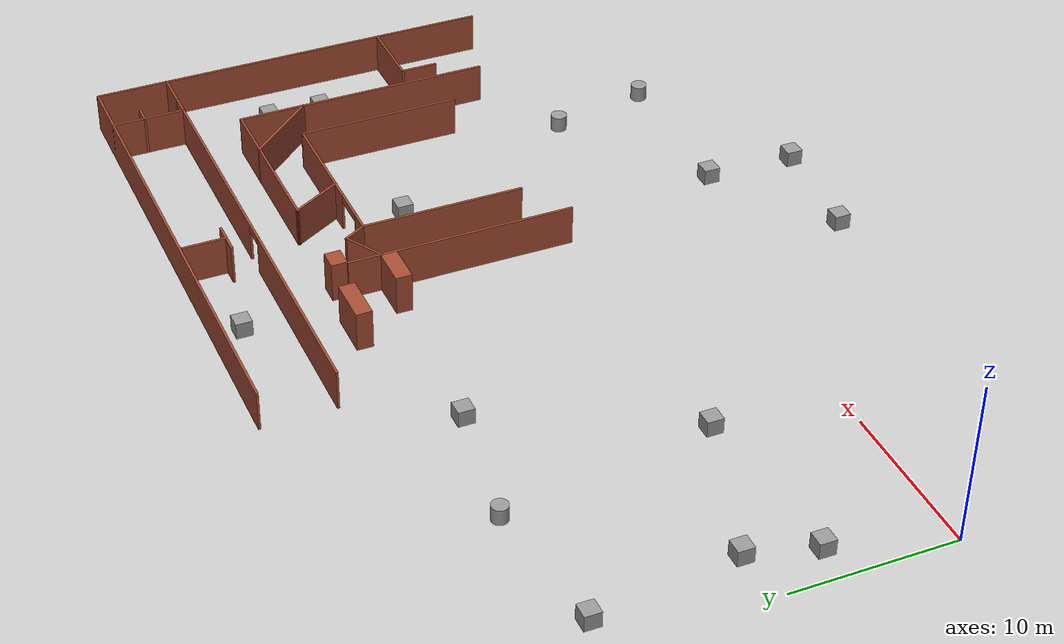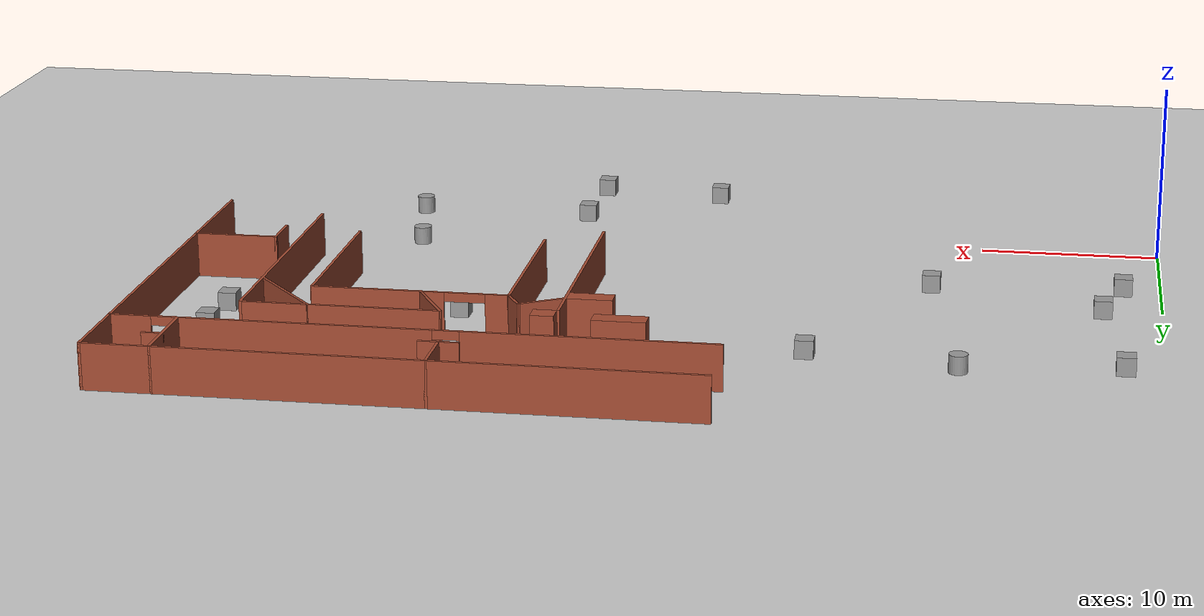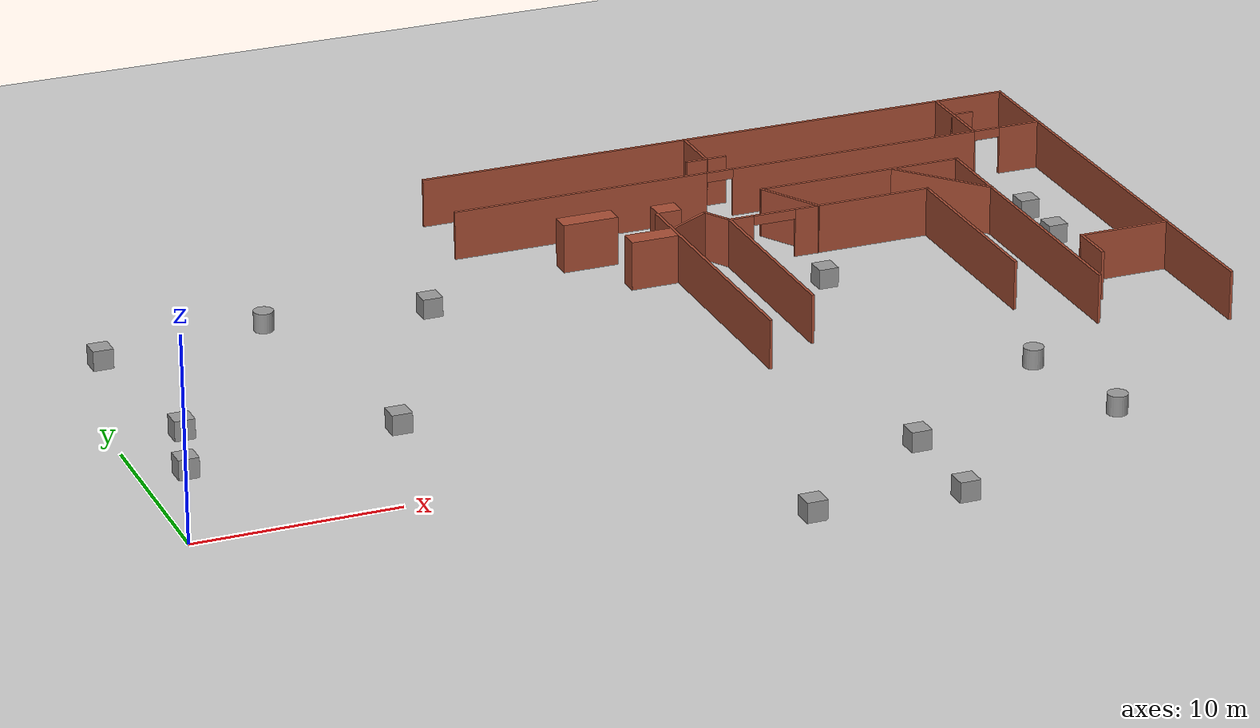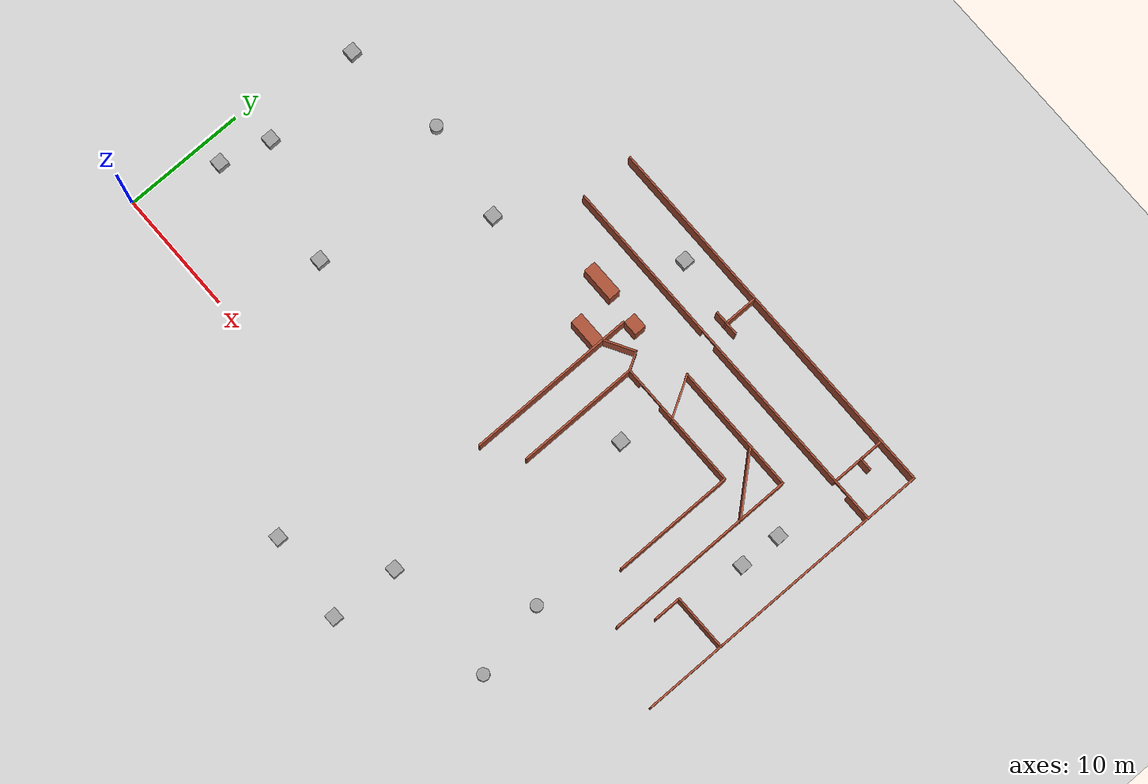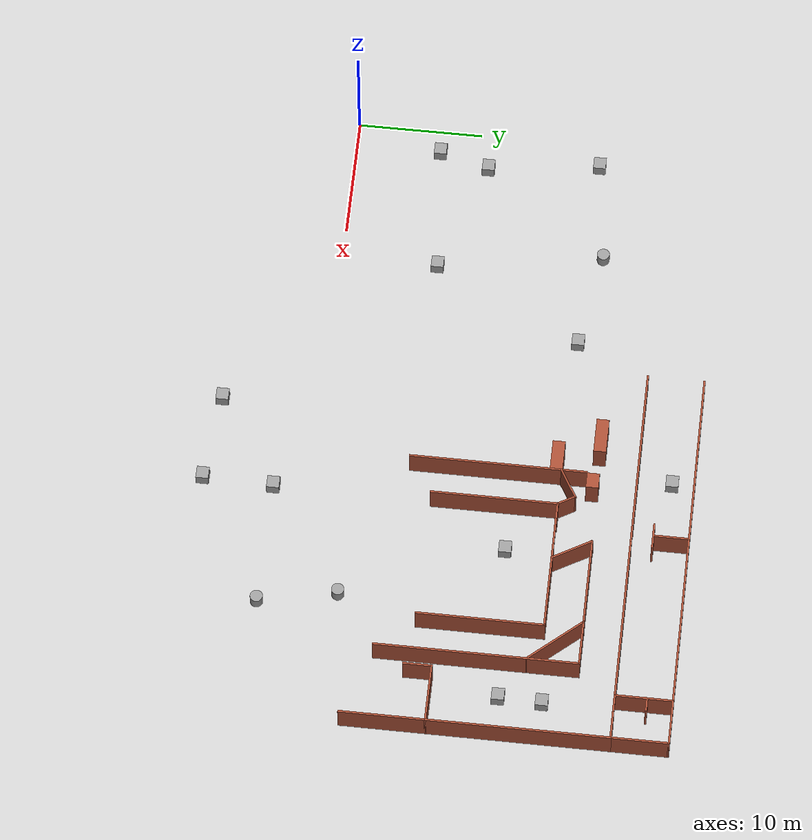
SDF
<sdf version="1.7">
 <world name="default">
  <model name="ground_plane">
   <static>1</static>
   <link name="link">
    <collision name="collision">
     <geometry><plane><normal>0 0 1</normal><size>100 100</size></plane></geometry>
     <surface><friction><ode><mu>100</mu><mu2>50</mu2></ode></friction></surface>
    </collision>
    <visual name="visual">
     <cast_shadows>0</cast_shadows>
     <geometry><plane><normal>0 0 1</normal><size>100 100</size></plane></geometry>
     <material>
      <script><uri>file://media/materials/scripts/gazebo.material</uri><name>Gazebo/Grey</name></script>
     </material>
    </visual>
   </link>
  </model>
  <model name="indoor_total_5">
   <pose>26.8 9 0 0 -0 0</pose>
   <link name="Wall_105">
    <collision name="Wall_105_Collision">
     <geometry><box><size>2.85 1 2.5</size></box></geometry>
     <pose>0 0 1.25 0 -0 0</pose>
    </collision>
    <visual name="Wall_105_Visual">
     <pose>0 0 1.25 0 -0 0</pose>
     <geometry><box><size>2.85 1 2.5</size></box></geometry>
     <material>
      <script><uri>file://media/materials/scripts/gazebo.material</uri><name>Gazebo/Bricks</name></script>
      <ambient>1 1 1 1</ambient>
     </material>
     <meta><layer>0</layer></meta>
    </visual>
    <pose>0.854767 13.3411 0 0 -0 0</pose>
   </link>
   <link name="Wall_107">
    <collision name="Wall_107_Collision">
     <geometry><box><size>16.15 0.15 2.5</size></box></geometry>
     <pose>0 0 1.25 0 -0 0</pose>
    </collision>
    <visual name="Wall_107_Visual">
     <pose>0 0 1.25 0 -0 0</pose>
     <geometry><box><size>16.15 0.15 2.5</size></box></geometry>
     <material>
      <script><uri>file://media/materials/scripts/gazebo.material</uri><name>Gazebo/Bricks</name></script>
      <ambient>1 1 1 1</ambient>
     </material>
     <meta><layer>0</layer></meta>
    </visual>
    <pose>20.8 5.5 0 0 -0 -1.5708</pose>
   </link>
   <link name="Wall_112">
    <collision name="Wall_112_Collision">
     <geometry><box><size>2.42454 1 2.5</size></box></geometry>
     <pose>0 0 1.25 0 -0 0</pose>
    </collision>
    <visual name="Wall_112_Visual">
     <pose>0 0 1.25 0 -0 0</pose>
     <geometry><box><size>2.42454 1 2.5</size></box></geometry>
     <material>
      <script><uri>file://media/materials/scripts/gazebo.material</uri><name>Gazebo/Bricks</name></script>
      <ambient>1 1 1 1</ambient>
     </material>
     <meta><layer>0</layer></meta>
    </visual>
    <pose>2.9125 10.087 0 0 -0 0</pose>
   </link>
   <link name="Wall_120">
    <collision name="Wall_120_Collision">
     <geometry><box><size>2.74856 0.15 2.5</size></box></geometry>
     <pose>0 0 1.25 0 -0 0</pose>
    </collision>
    <visual name="Wall_120_Visual">
     <pose>0 0 1.25 0 -0 0</pose>
     <geometry><box><size>2.74856 0.15 2.5</size></box></geometry>
     <material>
      <script><uri>file://media/materials/scripts/gazebo.material</uri><name>Gazebo/Bricks</name></script>
      <ambient>1 1 1 1</ambient>
     </material>
     <meta><layer>0</layer></meta>
    </visual>
    <pose>5.325 11.15 0 0 -0 0.523919</pose>
   </link>
   <link name="Wall_121">
    <collision name="Wall_121_Collision">
     <geometry><box><size>1.65083 0.15 2.5</size></box></geometry>
     <pose>0 0 1.25 0 -0 0</pose>
    </collision>
    <visual name="Wall_121_Visual">
     <pose>0 0 1.25 0 -0 0</pose>
     <geometry><box><size>1.65083 0.15 2.5</size></box></geometry>
     <material>
      <script><uri>file://media/materials/scripts/gazebo.material</uri><name>Gazebo/Bricks</name></script>
      <ambient>1 1 1 1</ambient>
     </material>
     <meta><layer>0</layer></meta>
    </visual>
    <pose>6.825 11.15 0 0 -0 -1.04752</pose>
   </link>
   <link name="Wall_128">
    <collision name="Wall_128_Collision">
     <geometry><box><size>3.61308 0.15 2.5</size></box></geometry>
     <pose>0 0 1.25 0 -0 0</pose>
    </collision>
    <visual name="Wall_128_Visual">
     <pose>0 0 1.25 0 -0 0</pose>
     <geometry><box><size>3.61308 0.15 2.5</size></box></geometry>
     <material>
      <script><uri>file://media/materials/scripts/gazebo.material</uri><name>Gazebo/Bricks</name></script>
      <ambient>1 1 1 1</ambient>
     </material>
     <meta><layer>0</layer></meta>
    </visual>
    <pose>11.065 12 0 0 -0 -1.04771</pose>
   </link>
   <link name="Wall_132">
    <collision name="Wall_132_Collision">
     <geometry><box><size>5.58972 0.15 2.5</size></box></geometry>
     <pose>0 0 1.25 0 -0 0</pose>
    </collision>
    <visual name="Wall_132_Visual">
     <pose>0 0 1.25 0 -0 0</pose>
     <geometry><box><size>5.58972 0.15 2.5</size></box></geometry>
     <material>
      <script><uri>file://media/materials/scripts/gazebo.material</uri><name>Gazebo/Bricks</name></script>
      <ambient>1 1 1 1</ambient>
     </material>
     <meta><layer>0</layer></meta>
    </visual>
    <pose>19.0085 11.4535 0 0 -0 -0.851742</pose>
   </link>
   <link name="Wall_142">
    <pose>12.5 10.5 0 0 -0 0</pose>
    <visual name="Wall_142_Visual_0">
     <pose>-4.705 0 1.25 0 -0 0</pose>
     <geometry><box><size>1.34 0.15 2.5</size></box></geometry>
     <material>
      <script><uri>file://media/materials/scripts/gazebo.material</uri><name>Gazebo/Bricks</name></script>
      <ambient>1 1 1 1</ambient>
     </material>
     <meta><layer>0</layer></meta>
    </visual>
    <collision name="Wall_142_Collision_0">
     <geometry><box><size>1.34 0.15 2.5</size></box></geometry>
     <pose>-4.705 0 1.25 0 -0 0</pose>
    </collision>
    <visual name="Wall_142_Visual_1">
     <pose>1.77 0 1.25 0 -0 0</pose>
     <geometry><box><size>7.21 0.15 2.5</size></box></geometry>
     <material>
      <script><uri>file://media/materials/scripts/gazebo.material</uri><name>Gazebo/Bricks</name></script>
      <ambient>1 1 1 1</ambient>
     </material>
     <meta><layer>0</layer></meta>
    </visual>
    <collision name="Wall_142_Collision_1">
     <geometry><box><size>7.21 0.15 2.5</size></box></geometry>
     <pose>1.77 0 1.25 0 -0 0</pose>
    </collision>
    <visual name="Wall_142_Visual_2">
     <pose>-2.935 0 2.25 0 -0 0</pose>
     <geometry><box><size>2.2 0.15 0.5</size></box></geometry>
     <material>
      <script><uri>file://media/materials/scripts/gazebo.material</uri><name>Gazebo/Bricks</name></script>
      <ambient>1 1 1 1</ambient>
     </material>
     <meta><layer>0</layer></meta>
    </visual>
    <collision name="Wall_142_Collision_2">
     <geometry><box><size>2.2 0.15 0.5</size></box></geometry>
     <pose>-2.935 0 2.25 0 -0 0</pose>
    </collision>
   </link>
   <link name="Wall_143">
    <collision name="Wall_143_Collision">
     <geometry><box><size>10.15 0.15 2.5</size></box></geometry>
     <pose>0 0 1.25 0 -0 0</pose>
    </collision>
    <visual name="Wall_143_Visual">
     <pose>0 0 1.25 0 -0 0</pose>
     <geometry><box><size>10.15 0.15 2.5</size></box></geometry>
     <material>
      <script><uri>file://media/materials/scripts/gazebo.material</uri><name>Gazebo/Bricks</name></script>
      <ambient>1 1 1 1</ambient>
     </material>
     <meta><layer>0</layer></meta>
    </visual>
    <pose>17.8 5.5 0 0 -0 -1.5708</pose>
   </link>
   <link name="Wall_145">
    <collision name="Wall_145_Collision">
     <geometry><box><size>10.15 0.15 2.5</size></box></geometry>
     <pose>0 0 1.25 0 -0 0</pose>
    </collision>
    <visual name="Wall_145_Visual">
     <pose>0 0 1.25 0 -0 0</pose>
     <geometry><box><size>10.15 0.15 2.5</size></box></geometry>
     <material>
      <script><uri>file://media/materials/scripts/gazebo.material</uri><name>Gazebo/Bricks</name></script>
      <ambient>1 1 1 1</ambient>
     </material>
     <meta><layer>0</layer></meta>
    </visual>
    <pose>7.2 5.5 0 0 -0 1.5708</pose>
   </link>
   <link name="Wall_147">
    <collision name="Wall_147_Collision">
     <geometry><box><size>2.15 0.15 2.5</size></box></geometry>
     <pose>0 0 1.25 0 -0 0</pose>
    </collision>
    <visual name="Wall_147_Visual">
     <pose>0 0 1.25 0 -0 0</pose>
     <geometry><box><size>2.15 0.15 2.5</size></box></geometry>
     <material>
      <script><uri>file://media/materials/scripts/gazebo.material</uri><name>Gazebo/Bricks</name></script>
      <ambient>1 1 1 1</ambient>
     </material>
     <meta><layer>0</layer></meta>
    </visual>
    <pose>9.2 18.2 0 0 -0 0</pose>
   </link>
   <link name="Wall_149">
    <collision name="Wall_149_Collision">
     <geometry><box><size>1.15 0.15 2.5</size></box></geometry>
     <pose>0 0 1.25 0 -0 0</pose>
    </collision>
    <visual name="Wall_149_Visual">
     <pose>0 0 1.25 0 -0 0</pose>
     <geometry><box><size>1.15 0.15 2.5</size></box></geometry>
     <material>
      <script><uri>file://media/materials/scripts/gazebo.material</uri><name>Gazebo/Bricks</name></script>
      <ambient>1 1 1 1</ambient>
     </material>
     <meta><layer>0</layer></meta>
    </visual>
    <pose>23.7 19 0 0 -0 0</pose>
   </link>
   <link name="Wall_174">
    <collision name="Wall_174_Collision">
     <geometry><box><size>1.25 1 2.5</size></box></geometry>
     <pose>0 0 1.25 0 -0 0</pose>
    </collision>
    <visual name="Wall_174_Visual">
     <pose>0 0 1.25 0 -0 0</pose>
     <geometry><box><size>1.25 1 2.5</size></box></geometry>
     <material>
      <script><uri>file://media/materials/scripts/gazebo.material</uri><name>Gazebo/Bricks</name></script>
      <ambient>1 1 1 1</ambient>
     </material>
     <meta><layer>0</layer></meta>
    </visual>
    <pose>4.88086 13.0421 0 0 -0 0</pose>
   </link>
   <link name="Wall_56">
    <collision name="Wall_56_Collision">
     <geometry><box><size>31.75 0.15 2.5</size></box></geometry>
     <pose>0 0 1.25 0 -0 0</pose>
    </collision>
    <visual name="Wall_56_Visual">
     <pose>0 0 1.25 0 -0 0</pose>
     <geometry><box><size>31.75 0.15 2.5</size></box></geometry>
     <material>
      <script><uri>file://media/materials/scripts/gazebo.material</uri><name>Gazebo/Bricks</name></script>
      <ambient>1 1 1 1</ambient>
     </material>
     <meta><layer>0</layer></meta>
    </visual>
    <pose>11 21 0 0 -0 0</pose>
   </link>
   <link name="Wall_57">
    <collision name="Wall_57_Collision">
     <geometry><box><size>4.65 0.15 2.5</size></box></geometry>
     <pose>0 0 1.25 0 -0 0</pose>
    </collision>
    <visual name="Wall_57_Visual">
     <pose>0 0 1.25 0 -0 0</pose>
     <geometry><box><size>4.65 0.15 2.5</size></box></geometry>
     <material>
      <script><uri>file://media/materials/scripts/gazebo.material</uri><name>Gazebo/Bricks</name></script>
      <ambient>1 1 1 1</ambient>
     </material>
     <meta><layer>0</layer></meta>
    </visual>
    <pose>26.8 18.75 0 0 -0 -1.5708</pose>
   </link>
   <link name="Wall_58">
    <pose>11 16.5 0 0 -0 3.14159</pose>
    <visual name="Wall_58_Visual_0">
     <pose>-14.7375 0 1.25 0 -0 0</pose>
     <geometry><box><size>2.275 0.15 2.5</size></box></geometry>
     <material>
      <script><uri>file://media/materials/scripts/gazebo.material</uri><name>Gazebo/Bricks</name></script>
      <ambient>1 1 1 1</ambient>
     </material>
     <meta><layer>0</layer></meta>
    </visual>
    <collision name="Wall_58_Collision_0">
     <geometry><box><size>2.275 0.15 2.5</size></box></geometry>
     <pose>-14.7375 0 1.25 0 -0 0</pose>
    </collision>
    <visual name="Wall_58_Visual_1">
     <pose>-5.55 0 1.25 0 -0 0</pose>
     <geometry><box><size>13.3 0.15 2.5</size></box></geometry>
     <material>
      <script><uri>file://media/materials/scripts/gazebo.material</uri><name>Gazebo/Bricks</name></script>
      <ambient>1 1 1 1</ambient>
     </material>
     <meta><layer>0</layer></meta>
    </visual>
    <collision name="Wall_58_Collision_1">
     <geometry><box><size>13.3 0.15 2.5</size></box></geometry>
     <pose>-5.55 0 1.25 0 -0 0</pose>
    </collision>
    <visual name="Wall_58_Visual_2">
     <pose>9.1875 0 1.25 0 -0 0</pose>
     <geometry><box><size>13.375 0.15 2.5</size></box></geometry>
     <material>
      <script><uri>file://media/materials/scripts/gazebo.material</uri><name>Gazebo/Bricks</name></script>
      <ambient>1 1 1 1</ambient>
     </material>
     <meta><layer>0</layer></meta>
    </visual>
    <collision name="Wall_58_Collision_2">
     <geometry><box><size>13.375 0.15 2.5</size></box></geometry>
     <pose>9.1875 0 1.25 0 -0 0</pose>
    </collision>
    <visual name="Wall_58_Visual_3">
     <pose>-12.9 0 2.25 0 -0 0</pose>
     <geometry><box><size>1.4 0.15 0.5</size></box></geometry>
     <material>
      <script><uri>file://media/materials/scripts/gazebo.material</uri><name>Gazebo/Bricks</name></script>
      <ambient>1 1 1 1</ambient>
     </material>
     <meta><layer>0</layer></meta>
    </visual>
    <collision name="Wall_58_Collision_3">
     <geometry><box><size>1.4 0.15 0.5</size></box></geometry>
     <pose>-12.9 0 2.25 0 -0 0</pose>
    </collision>
    <visual name="Wall_58_Visual_4">
     <pose>1.8 0 2.25 0 -0 0</pose>
     <geometry><box><size>1.4 0.15 0.5</size></box></geometry>
     <material>
      <script><uri>file://media/materials/scripts/gazebo.material</uri><name>Gazebo/Bricks</name></script>
      <ambient>1 1 1 1</ambient>
     </material>
     <meta><layer>0</layer></meta>
    </visual>
    <collision name="Wall_58_Collision_4">
     <geometry><box><size>1.4 0.15 0.5</size></box></geometry>
     <pose>1.8 0 2.25 0 -0 0</pose>
    </collision>
   </link>
   <link name="Wall_61">
    <collision name="Wall_61_Collision">
     <geometry><box><size>2.95 0.15 2.5</size></box></geometry>
     <pose>0 0 1.25 0 -0 0</pose>
    </collision>
    <visual name="Wall_61_Visual">
     <pose>0 0 1.25 0 -0 0</pose>
     <geometry><box><size>2.95 0.15 2.5</size></box></geometry>
     <material>
      <script><uri>file://media/materials/scripts/gazebo.material</uri><name>Gazebo/Bricks</name></script>
      <ambient>1 1 1 1</ambient>
     </material>
     <meta><layer>0</layer></meta>
    </visual>
    <pose>9.2 19.6 0 0 -0 -1.5708</pose>
   </link>
   <link name="Wall_63">
    <collision name="Wall_63_Collision">
     <geometry><box><size>4.65 0.15 2.5</size></box></geometry>
     <pose>0 0 1.25 0 -0 0</pose>
    </collision>
    <visual name="Wall_63_Visual">
     <pose>0 0 1.25 0 -0 0</pose>
     <geometry><box><size>4.65 0.15 2.5</size></box></geometry>
     <material>
      <script><uri>file://media/materials/scripts/gazebo.material</uri><name>Gazebo/Bricks</name></script>
      <ambient>1 1 1 1</ambient>
     </material>
     <meta><layer>0</layer></meta>
    </visual>
    <pose>23.2 18.75 0 0 -0 -1.5708</pose>
   </link>
   <link name="Wall_79">
    <collision name="Wall_79_Collision">
     <geometry><box><size>21.15 0.15 2.5</size></box></geometry>
     <pose>0 0 1.25 0 -0 0</pose>
    </collision>
    <visual name="Wall_79_Visual">
     <pose>0 0 1.25 0 -0 0</pose>
     <geometry><box><size>21.15 0.15 2.5</size></box></geometry>
     <material>
      <script><uri>file://media/materials/scripts/gazebo.material</uri><name>Gazebo/Bricks</name></script>
      <ambient>1 1 1 1</ambient>
     </material>
     <meta><layer>0</layer></meta>
    </visual>
    <pose>26.8 6 0 0 -0 -1.5708</pose>
   </link>
   <link name="Wall_81">
    <collision name="Wall_81_Collision">
     <geometry><box><size>14.0885 0.15 2.5</size></box></geometry>
     <pose>0 0 1.25 0 -0 0</pose>
    </collision>
    <visual name="Wall_81_Visual">
     <pose>0 0 1.25 0 -0 0</pose>
     <geometry><box><size>14.0885 0.15 2.5</size></box></geometry>
     <material>
      <script><uri>file://media/materials/scripts/gazebo.material</uri><name>Gazebo/Bricks</name></script>
      <ambient>1 1 1 1</ambient>
     </material>
     <meta><layer>0</layer></meta>
    </visual>
    <pose>4.2 5.531 0 0 -0 -1.5708</pose>
   </link>
   <link name="Wall_84">
    <collision name="Wall_84_Collision">
     <geometry><box><size>10.75 0.15 2.5</size></box></geometry>
     <pose>0 0 1.25 0 -0 0</pose>
    </collision>
    <visual name="Wall_84_Visual">
     <pose>0 0 1.25 0 -0 0</pose>
     <geometry><box><size>10.75 0.15 2.5</size></box></geometry>
     <material>
      <script><uri>file://media/materials/scripts/gazebo.material</uri><name>Gazebo/Bricks</name></script>
      <ambient>1 1 1 1</ambient>
     </material>
     <meta><layer>0</layer></meta>
    </visual>
    <pose>15.5 13.5 0 0 -0 0</pose>
   </link>
   <link name="Wall_97">
    <collision name="Wall_97_Collision">
     <geometry><box><size>4.75 0.15 2.5</size></box></geometry>
     <pose>0 0 1.25 0 -0 0</pose>
    </collision>
    <visual name="Wall_97_Visual">
     <pose>0 0 1.25 0 -0 0</pose>
     <geometry><box><size>4.75 0.15 2.5</size></box></geometry>
     <material>
      <script><uri>file://media/materials/scripts/gazebo.material</uri><name>Gazebo/Bricks</name></script>
      <ambient>1 1 1 1</ambient>
     </material>
     <meta><layer>0</layer></meta>
    </visual>
    <pose>24.5 2.2 0 0 -0 3.14159</pose>
   </link>
   <link name="Wall_98">
    <collision name="Wall_98_Collision">
     <geometry><box><size>2.35 0.15 2.5</size></box></geometry>
     <pose>0 0 1.25 0 -0 0</pose>
    </collision>
    <visual name="Wall_98_Visual">
     <pose>0 0 1.25 0 -0 0</pose>
     <geometry><box><size>2.35 0.15 2.5</size></box></geometry>
     <material>
      <script><uri>file://media/materials/scripts/gazebo.material</uri><name>Gazebo/Bricks</name></script>
      <ambient>1 1 1 1</ambient>
     </material>
     <meta><layer>0</layer></meta>
    </visual>
    <pose>22.2 1.1 0 0 -0 -1.5708</pose>
   </link>
   <static>1</static>
  </model>
  <model name="indoor_add_something">
   <link name="link_0">
    <inertial>
     <mass>1</mass>
     <inertia>
      <ixx>0.166667</ixx>
      <ixy>0</ixy>
      <ixz>0</ixz>
      <iyy>0.166667</iyy>
      <iyz>0</iyz>
      <izz>0.166667</izz>
     </inertia>
    </inertial>
    <pose>7.25284 -12.7803 0 0 -0 0</pose>
    <visual name="visual">
     <geometry><box><size>1 1 1</size></box></geometry>
     <material>
      <lighting>1</lighting>
      <script><uri>file://media/materials/scripts/gazebo.material</uri><name>Gazebo/Grey</name></script>
      <shader type="pixel"/>
     </material>
    </visual>
    <collision name="collision">
     <geometry><box><size>1 1 1</size></box></geometry>
     <surface>
      <friction>
       <ode><mu>1</mu><mu2>1</mu2><fdir1>0 0 0</fdir1><slip1>0</slip1><slip2>0</slip2></ode>
       <torsional>
        <coefficient>1</coefficient>
        <patch_radius>0</patch_radius>
        <surface_radius>0</surface_radius>
        <use_patch_radius>1</use_patch_radius>
        <ode><slip>0</slip></ode>
       </torsional>
      </friction>
      <bounce><restitution_coefficient>0</restitution_coefficient><threshold>1e+06</threshold></bounce>
      <contact>
       <collide_without_contact>0</collide_without_contact>
       <collide_without_contact_bitmask>1</collide_without_contact_bitmask>
       <collide_bitmask>1</collide_bitmask>
       <ode>
        <soft_cfm>0</soft_cfm>
        <soft_erp>0.2</soft_erp>
        <kp>1e+13</kp>
        <kd>1</kd>
        <max_vel>0.01</max_vel>
        <min_depth>0</min_depth>
       </ode>
       <bullet>
        <split_impulse>1</split_impulse>
        <split_impulse_penetration_threshold>-0.01</split_impulse_penetration_threshold>
        <soft_cfm>0</soft_cfm>
        <soft_erp>0.2</soft_erp>
        <kp>1e+13</kp>
        <kd>1</kd>
       </bullet>
      </contact>
     </surface>
    </collision>
   </link>
   <link name="link_1">
    <inertial>
     <mass>1</mass>
     <inertia><ixx>0.145833</ixx><ixy>0</ixy><ixz>0</ixz><iyy>0.145833</iyy><iyz>0</iyz><izz>0.125</izz></inertia>
    </inertial>
    <pose>17.3314 -12.8867 0 0 -0 0</pose>
    <visual name="visual">
     <geometry><cylinder><radius>0.5</radius><length>1</length></cylinder></geometry>
     <material>
      <lighting>1</lighting>
      <script><uri>file://media/materials/scripts/gazebo.material</uri><name>Gazebo/Grey</name></script>
      <shader type="pixel"/>
     </material>
    </visual>
    <collision name="collision">
     <geometry><cylinder><radius>0.5</radius><length>1</length></cylinder></geometry>
     <surface>
      <friction>
       <ode><mu>1</mu><mu2>1</mu2><fdir1>0 0 0</fdir1><slip1>0</slip1><slip2>0</slip2></ode>
       <torsional>
        <coefficient>1</coefficient>
        <patch_radius>0</patch_radius>
        <surface_radius>0</surface_radius>
        <use_patch_radius>1</use_patch_radius>
        <ode><slip>0</slip></ode>
       </torsional>
      </friction>
      <bounce><restitution_coefficient>0</restitution_coefficient><threshold>1e+06</threshold></bounce>
      <contact>
       <collide_without_contact>0</collide_without_contact>
       <collide_without_contact_bitmask>1</collide_without_contact_bitmask>
       <collide_bitmask>1</collide_bitmask>
       <ode>
        <soft_cfm>0</soft_cfm>
        <soft_erp>0.2</soft_erp>
        <kp>1e+13</kp>
        <kd>1</kd>
        <max_vel>0.01</max_vel>
        <min_depth>0</min_depth>
       </ode>
       <bullet>
        <split_impulse>1</split_impulse>
        <split_impulse_penetration_threshold>-0.01</split_impulse_penetration_threshold>
        <soft_cfm>0</soft_cfm>
        <soft_erp>0.2</soft_erp>
        <kp>1e+13</kp>
        <kd>1</kd>
       </bullet>
      </contact>
     </surface>
    </collision>
   </link>
   <link name="link_10">
    <inertial>
     <mass>1</mass>
     <inertia>
      <ixx>0.166667</ixx>
      <ixy>0</ixy>
      <ixz>0</ixz>
      <iyy>0.166667</iyy>
      <iyz>0</iyz>
      <izz>0.166667</izz>
     </inertia>
    </inertial>
    <pose>-13.8909 -2.04648 0 0 -0 0</pose>
    <visual name="visual">
     <geometry><box><size>1 1 1</size></box></geometry>
     <material>
      <lighting>1</lighting>
      <script><uri>file://media/materials/scripts/gazebo.material</uri><name>Gazebo/Grey</name></script>
      <shader type="pixel"/>
     </material>
    </visual>
    <collision name="collision">
     <geometry><box><size>1 1 1</size></box></geometry>
     <surface>
      <friction>
       <ode><mu>1</mu><mu2>1</mu2><fdir1>0 0 0</fdir1><slip1>0</slip1><slip2>0</slip2></ode>
       <torsional>
        <coefficient>1</coefficient>
        <patch_radius>0</patch_radius>
        <surface_radius>0</surface_radius>
        <use_patch_radius>1</use_patch_radius>
        <ode><slip>0</slip></ode>
       </torsional>
      </friction>
      <bounce><restitution_coefficient>0</restitution_coefficient><threshold>1e+06</threshold></bounce>
      <contact>
       <collide_without_contact>0</collide_without_contact>
       <collide_without_contact_bitmask>1</collide_without_contact_bitmask>
       <collide_bitmask>1</collide_bitmask>
       <ode>
        <soft_cfm>0</soft_cfm>
        <soft_erp>0.2</soft_erp>
        <kp>1e+13</kp>
        <kd>1</kd>
        <max_vel>0.01</max_vel>
        <min_depth>0</min_depth>
       </ode>
       <bullet>
        <split_impulse>1</split_impulse>
        <split_impulse_penetration_threshold>-0.01</split_impulse_penetration_threshold>
        <soft_cfm>0</soft_cfm>
        <soft_erp>0.2</soft_erp>
        <kp>1e+13</kp>
        <kd>1</kd>
       </bullet>
      </contact>
     </surface>
    </collision>
   </link>
   <link name="link_11">
    <inertial>
     <mass>1</mass>
     <inertia>
      <ixx>0.166667</ixx>
      <ixy>0</ixy>
      <ixz>0</ixz>
      <iyy>0.166667</iyy>
      <iyz>0</iyz>
      <izz>0.166667</izz>
     </inertia>
    </inertial>
    <pose>-23.2758 1.10184 0 0 -0 0</pose>
    <visual name="visual">
     <geometry><box><size>1 1 1</size></box></geometry>
     <material>
      <lighting>1</lighting>
      <script><uri>file://media/materials/scripts/gazebo.material</uri><name>Gazebo/Grey</name></script>
      <shader type="pixel"/>
     </material>
    </visual>
    <collision name="collision">
     <geometry><box><size>1 1 1</size></box></geometry>
     <surface>
      <friction>
       <ode><mu>1</mu><mu2>1</mu2><fdir1>0 0 0</fdir1><slip1>0</slip1><slip2>0</slip2></ode>
       <torsional>
        <coefficient>1</coefficient>
        <patch_radius>0</patch_radius>
        <surface_radius>0</surface_radius>
        <use_patch_radius>1</use_patch_radius>
        <ode><slip>0</slip></ode>
       </torsional>
      </friction>
      <bounce><restitution_coefficient>0</restitution_coefficient><threshold>1e+06</threshold></bounce>
      <contact>
       <collide_without_contact>0</collide_without_contact>
       <collide_without_contact_bitmask>1</collide_without_contact_bitmask>
       <collide_bitmask>1</collide_bitmask>
       <ode>
        <soft_cfm>0</soft_cfm>
        <soft_erp>0.2</soft_erp>
        <kp>1e+13</kp>
        <kd>1</kd>
        <max_vel>0.01</max_vel>
        <min_depth>0</min_depth>
       </ode>
       <bullet>
        <split_impulse>1</split_impulse>
        <split_impulse_penetration_threshold>-0.01</split_impulse_penetration_threshold>
        <soft_cfm>0</soft_cfm>
        <soft_erp>0.2</soft_erp>
        <kp>1e+13</kp>
        <kd>1</kd>
       </bullet>
      </contact>
     </surface>
    </collision>
   </link>
   <link name="link_12">
    <inertial>
     <mass>1</mass>
     <inertia>
      <ixx>0.166667</ixx>
      <ixy>0</ixy>
      <ixz>0</ixz>
      <iyy>0.166667</iyy>
      <iyz>0</iyz>
      <izz>0.166667</izz>
     </inertia>
    </inertial>
    <pose>-8.00201 9.87645 0 0 -0 0</pose>
    <visual name="visual">
     <geometry><box><size>1 1 1</size></box></geometry>
     <material>
      <lighting>1</lighting>
      <script><uri>file://media/materials/scripts/gazebo.material</uri><name>Gazebo/Grey</name></script>
      <shader type="pixel"/>
     </material>
    </visual>
    <collision name="collision">
     <geometry><box><size>1 1 1</size></box></geometry>
     <surface>
      <friction>
       <ode><mu>1</mu><mu2>1</mu2><fdir1>0 0 0</fdir1><slip1>0</slip1><slip2>0</slip2></ode>
       <torsional>
        <coefficient>1</coefficient>
        <patch_radius>0</patch_radius>
        <surface_radius>0</surface_radius>
        <use_patch_radius>1</use_patch_radius>
        <ode><slip>0</slip></ode>
       </torsional>
      </friction>
      <bounce><restitution_coefficient>0</restitution_coefficient><threshold>1e+06</threshold></bounce>
      <contact>
       <collide_without_contact>0</collide_without_contact>
       <collide_without_contact_bitmask>1</collide_without_contact_bitmask>
       <collide_bitmask>1</collide_bitmask>
       <ode>
        <soft_cfm>0</soft_cfm>
        <soft_erp>0.2</soft_erp>
        <kp>1e+13</kp>
        <kd>1</kd>
        <max_vel>0.01</max_vel>
        <min_depth>0</min_depth>
       </ode>
       <bullet>
        <split_impulse>1</split_impulse>
        <split_impulse_penetration_threshold>-0.01</split_impulse_penetration_threshold>
        <soft_cfm>0</soft_cfm>
        <soft_erp>0.2</soft_erp>
        <kp>1e+13</kp>
        <kd>1</kd>
       </bullet>
      </contact>
     </surface>
    </collision>
   </link>
   <link name="link_13">
    <inertial>
     <mass>1</mass>
     <inertia>
      <ixx>0.166667</ixx>
      <ixy>0</ixy>
      <ixz>0</ixz>
      <iyy>0.166667</iyy>
      <iyz>0</iyz>
      <izz>0.166667</izz>
     </inertia>
    </inertial>
    <pose>3.86519 18.4674 0 0 -0 0</pose>
    <visual name="visual">
     <geometry><box><size>1 1 1</size></box></geometry>
     <material>
      <lighting>1</lighting>
      <script><uri>file://media/materials/scripts/gazebo.material</uri><name>Gazebo/Grey</name></script>
      <shader type="pixel"/>
     </material>
    </visual>
    <collision name="collision">
     <geometry><box><size>1 1 1</size></box></geometry>
     <surface>
      <friction>
       <ode><mu>1</mu><mu2>1</mu2><fdir1>0 0 0</fdir1><slip1>0</slip1><slip2>0</slip2></ode>
       <torsional>
        <coefficient>1</coefficient>
        <patch_radius>0</patch_radius>
        <surface_radius>0</surface_radius>
        <use_patch_radius>1</use_patch_radius>
        <ode><slip>0</slip></ode>
       </torsional>
      </friction>
      <bounce><restitution_coefficient>0</restitution_coefficient><threshold>1e+06</threshold></bounce>
      <contact>
       <collide_without_contact>0</collide_without_contact>
       <collide_without_contact_bitmask>1</collide_without_contact_bitmask>
       <collide_bitmask>1</collide_bitmask>
       <ode>
        <soft_cfm>0</soft_cfm>
        <soft_erp>0.2</soft_erp>
        <kp>1e+13</kp>
        <kd>1</kd>
        <max_vel>0.01</max_vel>
        <min_depth>0</min_depth>
       </ode>
       <bullet>
        <split_impulse>1</split_impulse>
        <split_impulse_penetration_threshold>-0.01</split_impulse_penetration_threshold>
        <soft_cfm>0</soft_cfm>
        <soft_erp>0.2</soft_erp>
        <kp>1e+13</kp>
        <kd>1</kd>
       </bullet>
      </contact>
     </surface>
    </collision>
   </link>
   <link name="link_14">
    <inertial>
     <mass>1</mass>
     <inertia><ixx>0.145833</ixx><ixy>0</ixy><ixz>0</ixz><iyy>0.145833</iyy><iyz>0</iyz><izz>0.125</izz></inertia>
    </inertial>
    <pose>16.0726 -6.64505 0 0 -0 0</pose>
    <visual name="visual">
     <geometry><cylinder><radius>0.5</radius><length>1</length></cylinder></geometry>
     <material>
      <lighting>1</lighting>
      <script><uri>file://media/materials/scripts/gazebo.material</uri><name>Gazebo/Grey</name></script>
      <shader type="pixel"/>
     </material>
    </visual>
    <collision name="collision">
     <geometry><cylinder><radius>0.5</radius><length>1</length></cylinder></geometry>
     <surface>
      <friction>
       <ode><mu>1</mu><mu2>1</mu2><fdir1>0 0 0</fdir1><slip1>0</slip1><slip2>0</slip2></ode>
       <torsional>
        <coefficient>1</coefficient>
        <patch_radius>0</patch_radius>
        <surface_radius>0</surface_radius>
        <use_patch_radius>1</use_patch_radius>
        <ode><slip>0</slip></ode>
       </torsional>
      </friction>
      <bounce><restitution_coefficient>0</restitution_coefficient><threshold>1e+06</threshold></bounce>
      <contact>
       <collide_without_contact>0</collide_without_contact>
       <collide_without_contact_bitmask>1</collide_without_contact_bitmask>
       <collide_bitmask>1</collide_bitmask>
       <ode>
        <soft_cfm>0</soft_cfm>
        <soft_erp>0.2</soft_erp>
        <kp>1e+13</kp>
        <kd>1</kd>
        <max_vel>0.01</max_vel>
        <min_depth>0</min_depth>
       </ode>
       <bullet>
        <split_impulse>1</split_impulse>
        <split_impulse_penetration_threshold>-0.01</split_impulse_penetration_threshold>
        <soft_cfm>0</soft_cfm>
        <soft_erp>0.2</soft_erp>
        <kp>1e+13</kp>
        <kd>1</kd>
       </bullet>
      </contact>
     </surface>
    </collision>
   </link>
   <link name="link_2">
    <inertial>
     <mass>1</mass>
     <inertia>
      <ixx>0.166667</ixx>
      <ixy>0</ixy>
      <ixz>0</ixz>
      <iyy>0.166667</iyy>
      <iyz>0</iyz>
      <izz>0.166667</izz>
     </inertia>
    </inertial>
    <pose>7.01776 -18.4145 0 0 -0 0</pose>
    <visual name="visual">
     <geometry><box><size>1 1 1</size></box></geometry>
     <material>
      <lighting>1</lighting>
      <script><uri>file://media/materials/scripts/gazebo.material</uri><name>Gazebo/Grey</name></script>
      <shader type="pixel"/>
     </material>
    </visual>
    <collision name="collision">
     <geometry><box><size>1 1 1</size></box></geometry>
     <surface>
      <friction>
       <ode><mu>1</mu><mu2>1</mu2><fdir1>0 0 0</fdir1><slip1>0</slip1><slip2>0</slip2></ode>
       <torsional>
        <coefficient>1</coefficient>
        <patch_radius>0</patch_radius>
        <surface_radius>0</surface_radius>
        <use_patch_radius>1</use_patch_radius>
        <ode><slip>0</slip></ode>
       </torsional>
      </friction>
      <bounce><restitution_coefficient>0</restitution_coefficient><threshold>1e+06</threshold></bounce>
      <contact>
       <collide_without_contact>0</collide_without_contact>
       <collide_without_contact_bitmask>1</collide_without_contact_bitmask>
       <collide_bitmask>1</collide_bitmask>
       <ode>
        <soft_cfm>0</soft_cfm>
        <soft_erp>0.2</soft_erp>
        <kp>1e+13</kp>
        <kd>1</kd>
        <max_vel>0.01</max_vel>
        <min_depth>0</min_depth>
       </ode>
       <bullet>
        <split_impulse>1</split_impulse>
        <split_impulse_penetration_threshold>-0.01</split_impulse_penetration_threshold>
        <soft_cfm>0</soft_cfm>
        <soft_erp>0.2</soft_erp>
        <kp>1e+13</kp>
        <kd>1</kd>
       </bullet>
      </contact>
     </surface>
    </collision>
   </link>
   <link name="link_3">
    <inertial>
     <mass>1</mass>
     <inertia>
      <ixx>0.166667</ixx>
      <ixy>0</ixy>
      <ixz>0</ixz>
      <iyy>0.166667</iyy>
      <iyz>0</iyz>
      <izz>0.166667</izz>
     </inertia>
    </inertial>
    <pose>23.8104 10.1236 0 0 -0 0</pose>
    <visual name="visual">
     <geometry><box><size>1 1 1</size></box></geometry>
     <material>
      <lighting>1</lighting>
      <script><uri>file://media/materials/scripts/gazebo.material</uri><name>Gazebo/Grey</name></script>
      <shader type="pixel"/>
     </material>
    </visual>
    <collision name="collision">
     <geometry><box><size>1 1 1</size></box></geometry>
     <surface>
      <friction>
       <ode><mu>1</mu><mu2>1</mu2><fdir1>0 0 0</fdir1><slip1>0</slip1><slip2>0</slip2></ode>
       <torsional>
        <coefficient>1</coefficient>
        <patch_radius>0</patch_radius>
        <surface_radius>0</surface_radius>
        <use_patch_radius>1</use_patch_radius>
        <ode><slip>0</slip></ode>
       </torsional>
      </friction>
      <bounce><restitution_coefficient>0</restitution_coefficient><threshold>1e+06</threshold></bounce>
      <contact>
       <collide_without_contact>0</collide_without_contact>
       <collide_without_contact_bitmask>1</collide_without_contact_bitmask>
       <collide_bitmask>1</collide_bitmask>
       <ode>
        <soft_cfm>0</soft_cfm>
        <soft_erp>0.2</soft_erp>
        <kp>1e+13</kp>
        <kd>1</kd>
        <max_vel>0.01</max_vel>
        <min_depth>0</min_depth>
       </ode>
       <bullet>
        <split_impulse>1</split_impulse>
        <split_impulse_penetration_threshold>-0.01</split_impulse_penetration_threshold>
        <soft_cfm>0</soft_cfm>
        <soft_erp>0.2</soft_erp>
        <kp>1e+13</kp>
        <kd>1</kd>
       </bullet>
      </contact>
     </surface>
    </collision>
   </link>
   <link name="link_4">
    <inertial>
     <mass>1</mass>
     <inertia>
      <ixx>0.166667</ixx>
      <ixy>0</ixy>
      <ixz>0</ixz>
      <iyy>0.166667</iyy>
      <iyz>0</iyz>
      <izz>0.166667</izz>
     </inertia>
    </inertial>
    <pose>23.6815 6.70922 0 0 -0 0</pose>
    <visual name="visual">
     <geometry><box><size>1 1 1</size></box></geometry>
     <material>
      <lighting>1</lighting>
      <script><uri>file://media/materials/scripts/gazebo.material</uri><name>Gazebo/Grey</name></script>
      <shader type="pixel"/>
     </material>
    </visual>
    <collision name="collision">
     <geometry><box><size>1 1 1</size></box></geometry>
     <surface>
      <friction>
       <ode><mu>1</mu><mu2>1</mu2><fdir1>0 0 0</fdir1><slip1>0</slip1><slip2>0</slip2></ode>
       <torsional>
        <coefficient>1</coefficient>
        <patch_radius>0</patch_radius>
        <surface_radius>0</surface_radius>
        <use_patch_radius>1</use_patch_radius>
        <ode><slip>0</slip></ode>
       </torsional>
      </friction>
      <bounce><restitution_coefficient>0</restitution_coefficient><threshold>1e+06</threshold></bounce>
      <contact>
       <collide_without_contact>0</collide_without_contact>
       <collide_without_contact_bitmask>1</collide_without_contact_bitmask>
       <collide_bitmask>1</collide_bitmask>
       <ode>
        <soft_cfm>0</soft_cfm>
        <soft_erp>0.2</soft_erp>
        <kp>1e+13</kp>
        <kd>1</kd>
        <max_vel>0.01</max_vel>
        <min_depth>0</min_depth>
       </ode>
       <bullet>
        <split_impulse>1</split_impulse>
        <split_impulse_penetration_threshold>-0.01</split_impulse_penetration_threshold>
        <soft_cfm>0</soft_cfm>
        <soft_erp>0.2</soft_erp>
        <kp>1e+13</kp>
        <kd>1</kd>
       </bullet>
      </contact>
     </surface>
    </collision>
   </link>
   <link name="link_5">
    <inertial>
     <mass>1</mass>
     <inertia>
      <ixx>0.166667</ixx>
      <ixy>0</ixy>
      <ixz>0</ixz>
      <iyy>0.166667</iyy>
      <iyz>0</iyz>
      <izz>0.166667</izz>
     </inertia>
    </inertial>
    <pose>10.972 5.96482 0 0 -0 0</pose>
    <visual name="visual">
     <geometry><box><size>1 1 1</size></box></geometry>
     <material>
      <lighting>1</lighting>
      <script><uri>file://media/materials/scripts/gazebo.material</uri><name>Gazebo/Grey</name></script>
      <shader type="pixel"/>
     </material>
    </visual>
    <collision name="collision">
     <geometry><box><size>1 1 1</size></box></geometry>
     <surface>
      <friction>
       <ode><mu>1</mu><mu2>1</mu2><fdir1>0 0 0</fdir1><slip1>0</slip1><slip2>0</slip2></ode>
       <torsional>
        <coefficient>1</coefficient>
        <patch_radius>0</patch_radius>
        <surface_radius>0</surface_radius>
        <use_patch_radius>1</use_patch_radius>
        <ode><slip>0</slip></ode>
       </torsional>
      </friction>
      <bounce><restitution_coefficient>0</restitution_coefficient><threshold>1e+06</threshold></bounce>
      <contact>
       <collide_without_contact>0</collide_without_contact>
       <collide_without_contact_bitmask>1</collide_without_contact_bitmask>
       <collide_bitmask>1</collide_bitmask>
       <ode>
        <soft_cfm>0</soft_cfm>
        <soft_erp>0.2</soft_erp>
        <kp>1e+13</kp>
        <kd>1</kd>
        <max_vel>0.01</max_vel>
        <min_depth>0</min_depth>
       </ode>
       <bullet>
        <split_impulse>1</split_impulse>
        <split_impulse_penetration_threshold>-0.01</split_impulse_penetration_threshold>
        <soft_cfm>0</soft_cfm>
        <soft_erp>0.2</soft_erp>
        <kp>1e+13</kp>
        <kd>1</kd>
       </bullet>
      </contact>
     </surface>
    </collision>
   </link>
   <link name="link_6">
    <inertial>
     <mass>1</mass>
     <inertia><ixx>0.145833</ixx><ixy>0</ixy><ixz>0</ixz><iyy>0.145833</iyy><iyz>0</iyz><izz>0.125</izz></inertia>
    </inertial>
    <pose>-15.9468 11.1347 0 0 -0 0</pose>
    <visual name="visual">
     <geometry><cylinder><radius>0.5</radius><length>1</length></cylinder></geometry>
     <material>
      <lighting>1</lighting>
      <script><uri>file://media/materials/scripts/gazebo.material</uri><name>Gazebo/Grey</name></script>
      <shader type="pixel"/>
     </material>
    </visual>
    <collision name="collision">
     <geometry><cylinder><radius>0.5</radius><length>1</length></cylinder></geometry>
     <surface>
      <friction>
       <ode><mu>1</mu><mu2>1</mu2><fdir1>0 0 0</fdir1><slip1>0</slip1><slip2>0</slip2></ode>
       <torsional>
        <coefficient>1</coefficient>
        <patch_radius>0</patch_radius>
        <surface_radius>0</surface_radius>
        <use_patch_radius>1</use_patch_radius>
        <ode><slip>0</slip></ode>
       </torsional>
      </friction>
      <bounce><restitution_coefficient>0</restitution_coefficient><threshold>1e+06</threshold></bounce>
      <contact>
       <collide_without_contact>0</collide_without_contact>
       <collide_without_contact_bitmask>1</collide_without_contact_bitmask>
       <collide_bitmask>1</collide_bitmask>
       <ode>
        <soft_cfm>0</soft_cfm>
        <soft_erp>0.2</soft_erp>
        <kp>1e+13</kp>
        <kd>1</kd>
        <max_vel>0.01</max_vel>
        <min_depth>0</min_depth>
       </ode>
       <bullet>
        <split_impulse>1</split_impulse>
        <split_impulse_penetration_threshold>-0.01</split_impulse_penetration_threshold>
        <soft_cfm>0</soft_cfm>
        <soft_erp>0.2</soft_erp>
        <kp>1e+13</kp>
        <kd>1</kd>
       </bullet>
      </contact>
     </surface>
    </collision>
   </link>
   <link name="link_7">
    <inertial>
     <mass>1</mass>
     <inertia>
      <ixx>0.166667</ixx>
      <ixy>0</ixy>
      <ixz>0</ixz>
      <iyy>0.166667</iyy>
      <iyz>0</iyz>
      <izz>0.166667</izz>
     </inertia>
    </inertial>
    <pose>-24.3819 10.0491 0 0 -0 0</pose>
    <visual name="visual">
     <geometry><box><size>1 1 1</size></box></geometry>
     <material>
      <lighting>1</lighting>
      <script><uri>file://media/materials/scripts/gazebo.material</uri><name>Gazebo/Grey</name></script>
      <shader type="pixel"/>
     </material>
    </visual>
    <collision name="collision">
     <geometry><box><size>1 1 1</size></box></geometry>
     <surface>
      <friction>
       <ode><mu>1</mu><mu2>1</mu2><fdir1>0 0 0</fdir1><slip1>0</slip1><slip2>0</slip2></ode>
       <torsional>
        <coefficient>1</coefficient>
        <patch_radius>0</patch_radius>
        <surface_radius>0</surface_radius>
        <use_patch_radius>1</use_patch_radius>
        <ode><slip>0</slip></ode>
       </torsional>
      </friction>
      <bounce><restitution_coefficient>0</restitution_coefficient><threshold>1e+06</threshold></bounce>
      <contact>
       <collide_without_contact>0</collide_without_contact>
       <collide_without_contact_bitmask>1</collide_without_contact_bitmask>
       <collide_bitmask>1</collide_bitmask>
       <ode>
        <soft_cfm>0</soft_cfm>
        <soft_erp>0.2</soft_erp>
        <kp>1e+13</kp>
        <kd>1</kd>
        <max_vel>0.01</max_vel>
        <min_depth>0</min_depth>
       </ode>
       <bullet>
        <split_impulse>1</split_impulse>
        <split_impulse_penetration_threshold>-0.01</split_impulse_penetration_threshold>
        <soft_cfm>0</soft_cfm>
        <soft_erp>0.2</soft_erp>
        <kp>1e+13</kp>
        <kd>1</kd>
       </bullet>
      </contact>
     </surface>
    </collision>
   </link>
   <link name="link_8">
    <inertial>
     <mass>1</mass>
     <inertia>
      <ixx>0.166667</ixx>
      <ixy>0</ixy>
      <ixz>0</ixz>
      <iyy>0.166667</iyy>
      <iyz>0</iyz>
      <izz>0.166667</izz>
     </inertia>
    </inertial>
    <pose>-24.3859 -2.93035 0 0 -0 0</pose>
    <visual name="visual">
     <geometry><box><size>1 1 1</size></box></geometry>
     <material>
      <lighting>1</lighting>
      <script><uri>file://media/materials/scripts/gazebo.material</uri><name>Gazebo/Grey</name></script>
      <shader type="pixel"/>
     </material>
    </visual>
    <collision name="collision">
     <geometry><box><size>1 1 1</size></box></geometry>
     <surface>
      <friction>
       <ode><mu>1</mu><mu2>1</mu2><fdir1>0 0 0</fdir1><slip1>0</slip1><slip2>0</slip2></ode>
       <torsional>
        <coefficient>1</coefficient>
        <patch_radius>0</patch_radius>
        <surface_radius>0</surface_radius>
        <use_patch_radius>1</use_patch_radius>
        <ode><slip>0</slip></ode>
       </torsional>
      </friction>
      <bounce><restitution_coefficient>0</restitution_coefficient><threshold>1e+06</threshold></bounce>
      <contact>
       <collide_without_contact>0</collide_without_contact>
       <collide_without_contact_bitmask>1</collide_without_contact_bitmask>
       <collide_bitmask>1</collide_bitmask>
       <ode>
        <soft_cfm>0</soft_cfm>
        <soft_erp>0.2</soft_erp>
        <kp>1e+13</kp>
        <kd>1</kd>
        <max_vel>0.01</max_vel>
        <min_depth>0</min_depth>
       </ode>
       <bullet>
        <split_impulse>1</split_impulse>
        <split_impulse_penetration_threshold>-0.01</split_impulse_penetration_threshold>
        <soft_cfm>0</soft_cfm>
        <soft_erp>0.2</soft_erp>
        <kp>1e+13</kp>
        <kd>1</kd>
       </bullet>
      </contact>
     </surface>
    </collision>
   </link>
   <link name="link_9">
    <inertial>
     <mass>1</mass>
     <inertia>
      <ixx>0.166667</ixx>
      <ixy>0</ixy>
      <ixz>0</ixz>
      <iyy>0.166667</iyy>
      <iyz>0</iyz>
      <izz>0.166667</izz>
     </inertia>
    </inertial>
    <pose>-0.120328 -17.7238 0 0 -0 0</pose>
    <visual name="visual">
     <geometry><box><size>1 1 1</size></box></geometry>
     <material>
      <lighting>1</lighting>
      <script><uri>file://media/materials/scripts/gazebo.material</uri><name>Gazebo/Grey</name></script>
      <shader type="pixel"/>
     </material>
    </visual>
    <collision name="collision">
     <geometry><box><size>1 1 1</size></box></geometry>
     <surface>
      <friction>
       <ode><mu>1</mu><mu2>1</mu2><fdir1>0 0 0</fdir1><slip1>0</slip1><slip2>0</slip2></ode>
       <torsional>
        <coefficient>1</coefficient>
        <patch_radius>0</patch_radius>
        <surface_radius>0</surface_radius>
        <use_patch_radius>1</use_patch_radius>
        <ode><slip>0</slip></ode>
       </torsional>
      </friction>
      <bounce><restitution_coefficient>0</restitution_coefficient><threshold>1e+06</threshold></bounce>
      <contact>
       <collide_without_contact>0</collide_without_contact>
       <collide_without_contact_bitmask>1</collide_without_contact_bitmask>
       <collide_bitmask>1</collide_bitmask>
       <ode>
        <soft_cfm>0</soft_cfm>
        <soft_erp>0.2</soft_erp>
        <kp>1e+13</kp>
        <kd>1</kd>
        <max_vel>0.01</max_vel>
        <min_depth>0</min_depth>
       </ode>
       <bullet>
        <split_impulse>1</split_impulse>
        <split_impulse_penetration_threshold>-0.01</split_impulse_penetration_threshold>
        <soft_cfm>0</soft_cfm>
        <soft_erp>0.2</soft_erp>
        <kp>1e+13</kp>
        <kd>1</kd>
       </bullet>
      </contact>
     </surface>
    </collision>
   </link>
   <static>0</static>
   <pose>26.4471 9.76784 0.5 0 -0 0</pose>
  </model>
 </world>
</sdf>
